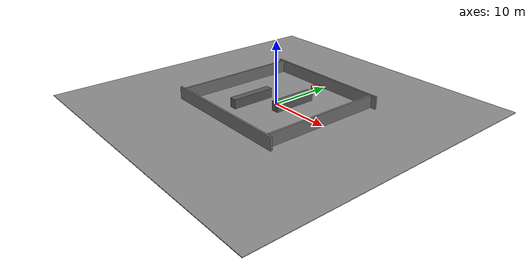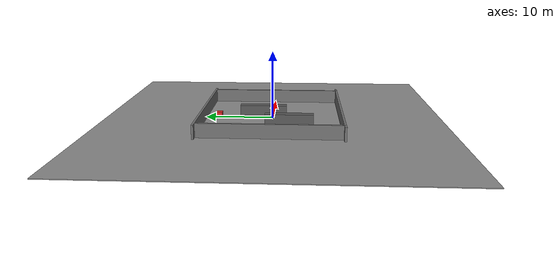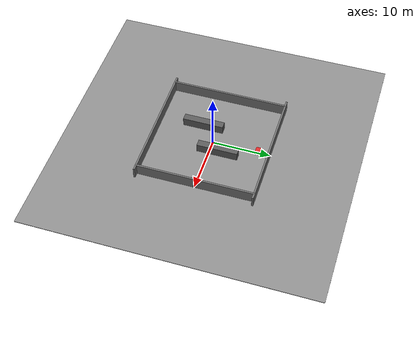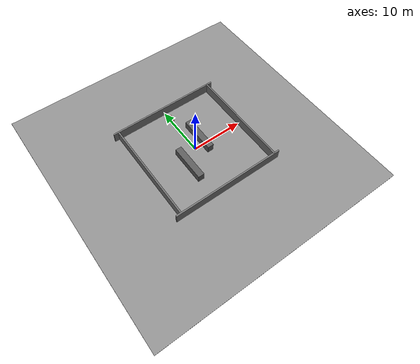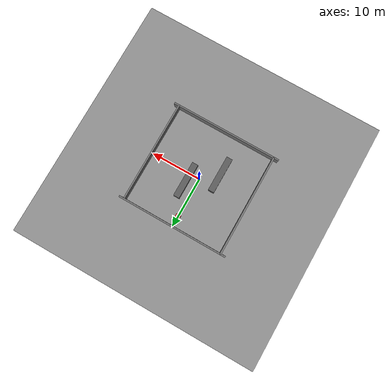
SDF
<?xml version="1.0" ?>
<sdf version="1.8">
  <world name="warehouse_lightweight_gz">
    <plugin filename="ignition-gazebo-physics-system" name="ignition::gazebo::systems::Physics"/>
    <plugin filename="ignition-gazebo-sensors-system" name="ignition::gazebo::systems::Sensors"/>
    <plugin filename="ignition-gazebo-scene-broadcaster-system" name="ignition::gazebo::systems::SceneBroadcaster"/>
    <plugin filename="ignition-gazebo-user-commands-system" name="ignition::gazebo::systems::UserCommands"/>

    <gravity>0 0 -9.81</gravity>
    <physics type="ode" name="ode_physics">
      <max_step_size>0.002</max_step_size>
      <real_time_factor>1.0</real_time_factor>
      <real_time_update_rate>500</real_time_update_rate>
    </physics>

    <scene>
      <ambient>0.5 0.5 0.5 1.0</ambient>
      <background>0.85 0.85 0.85 1.0</background>
      <shadows>false</shadows>
    </scene>

    <model name="ground_plane">
      <static>true</static>
      <link name="link">
        <collision name="collision">
          <geometry>
            <box><size>50 50 0.1</size></box>
          </geometry>
          <pose>0 0 -0.05 0 0 0</pose>
        </collision>
        <visual name="visual">
          <geometry>
            <box><size>50 50 0.1</size></box>
          </geometry>
          <pose>0 0 -0.05 0 0 0</pose>
          <material>
            <ambient>0.55 0.55 0.55 1.0</ambient>
            <diffuse>0.55 0.55 0.55 1.0</diffuse>
            <specular>0.0 0.0 0.0 1.0</specular>
          </material>
        </visual>
      </link>
    </model>

    <light name="sun_like" type="directional">
      <pose>0 0 12 0 0 0</pose>
      <diffuse>0.8 0.8 0.8 1.0</diffuse>
      <specular>0.1 0.1 0.1 1.0</specular>
      <direction>-0.2 0.1 -1.0</direction>
      <cast_shadows>false</cast_shadows>
    </light>

    <model name="wall_north">
      <static>true</static>
      <pose>0 10 1.0 0 0 0</pose>
      <link name="link">
        <collision name="collision"><geometry><box><size>22 0.3 2.0</size></box></geometry></collision>
        <visual name="visual"><geometry><box><size>22 0.3 2.0</size></box></geometry><material><ambient>0.45 0.45 0.45 1</ambient><diffuse>0.45 0.45 0.45 1</diffuse></material></visual>
      </link>
    </model>
    <model name="wall_south">
      <static>true</static>
      <pose>0 -10 1.0 0 0 0</pose>
      <link name="link">
        <collision name="collision"><geometry><box><size>22 0.3 2.0</size></box></geometry></collision>
        <visual name="visual"><geometry><box><size>22 0.3 2.0</size></box></geometry><material><ambient>0.45 0.45 0.45 1</ambient><diffuse>0.45 0.45 0.45 1</diffuse></material></visual>
      </link>
    </model>
    <model name="wall_west">
      <static>true</static>
      <pose>-10 0 1.0 0 0 0</pose>
      <link name="link">
        <collision name="collision"><geometry><box><size>0.3 20 2.0</size></box></geometry></collision>
        <visual name="visual"><geometry><box><size>0.3 20 2.0</size></box></geometry><material><ambient>0.45 0.45 0.45 1</ambient><diffuse>0.45 0.45 0.45 1</diffuse></material></visual>
      </link>
    </model>
    <model name="wall_east">
      <static>true</static>
      <pose>10 0 1.0 0 0 0</pose>
      <link name="link">
        <collision name="collision"><geometry><box><size>0.3 20 2.0</size></box></geometry></collision>
        <visual name="visual"><geometry><box><size>0.3 20 2.0</size></box></geometry><material><ambient>0.45 0.45 0.45 1</ambient><diffuse>0.45 0.45 0.45 1</diffuse></material></visual>
      </link>
    </model>

    <model name="shelf_row_1">
      <static>true</static>
      <pose>-3.0 -2.5 0.75 0 0 0</pose>
      <link name="link">
        <collision name="collision"><geometry><box><size>1.2 7.0 1.5</size></box></geometry></collision>
        <visual name="visual"><geometry><box><size>1.2 7.0 1.5</size></box></geometry><material><ambient>0.35 0.35 0.35 1</ambient><diffuse>0.35 0.35 0.35 1</diffuse></material></visual>
      </link>
    </model>
    <model name="shelf_row_2">
      <static>true</static>
      <pose>2.0 1.5 0.75 0 0 0</pose>
      <link name="link">
        <collision name="collision"><geometry><box><size>1.2 7.0 1.5</size></box></geometry></collision>
        <visual name="visual"><geometry><box><size>1.2 7.0 1.5</size></box></geometry><material><ambient>0.35 0.35 0.35 1</ambient><diffuse>0.35 0.35 0.35 1</diffuse></material></visual>
      </link>
    </model>

    <model name="moving_center_box">
      <static>false</static>
      <allow_auto_disable>false</allow_auto_disable>
      <pose>0.0 8.0 0.45 0 0 0</pose>
      <link name="base_link">
        <inertial>
          <mass>12.0</mass>
          <inertia>
            <ixx>0.50</ixx>
            <iyy>0.50</iyy>
            <izz>0.50</izz>
            <ixy>0.0</ixy>
            <ixz>0.0</ixz>
            <iyz>0.0</iyz>
          </inertia>
        </inertial>
        <collision name="collision">
          <geometry>
            <box><size>0.9 0.9 0.9</size></box>
          </geometry>
        </collision>
        <visual name="visual">
          <geometry>
            <box><size>0.9 0.9 0.9</size></box>
          </geometry>
          <material>
            <ambient>0.85 0.15 0.15 1</ambient>
            <diffuse>0.85 0.15 0.15 1</diffuse>
          </material>
        </visual>
      </link>
      <plugin
        filename="ignition-gazebo-trajectory-follower-system"
        name="ignition::gazebo::systems::TrajectoryFollower">
        <link_name>base_link</link_name>
        <loop>true</loop>
        <waypoints>
          <waypoint>0.0 8.0</waypoint>
          <waypoint>0.0 -8.0</waypoint>
        </waypoints>
      </plugin>
    </model>
  </world>
</sdf>
